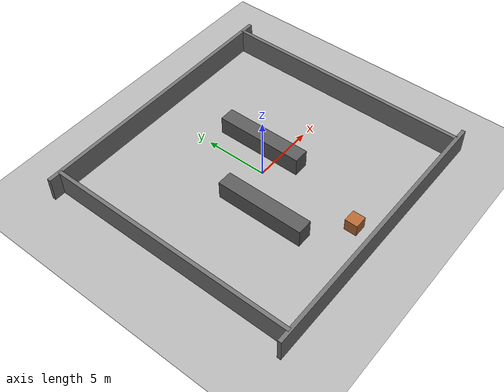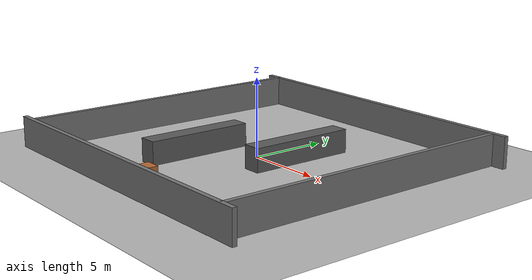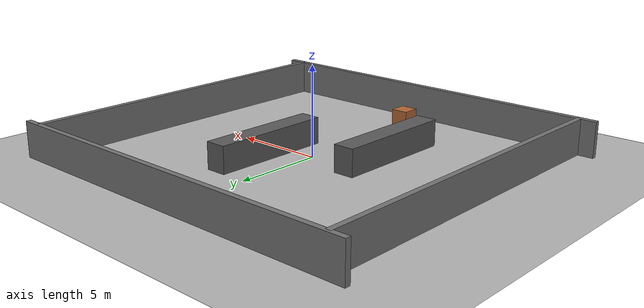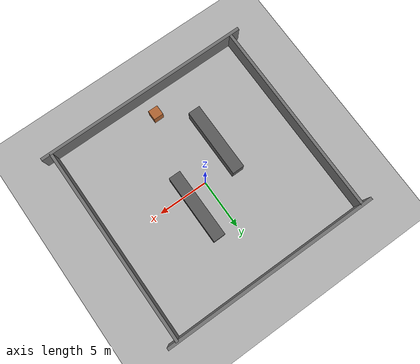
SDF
<?xml version="1.0"?>
<sdf version="1.7">
  <world name="warehouse_lightweight">

    <physics name="1ms" type="ignored">
      <max_step_size>0.001</max_step_size>
      <real_time_factor>1.0</real_time_factor>
    </physics>

    <!-- Explicit system plugins (some setups don't auto-load these). -->
    <plugin filename="ignition-gazebo-physics-system"
            name="ignition::gazebo::systems::Physics" />
    <plugin filename="ignition-gazebo-user-commands-system"
            name="ignition::gazebo::systems::UserCommands" />
    <plugin filename="ignition-gazebo-scene-broadcaster-system"
            name="ignition::gazebo::systems::SceneBroadcaster" />
    <plugin filename="ignition-gazebo-sensors-system"
            name="ignition::gazebo::systems::Sensors">
      <render_engine>ogre2</render_engine>
    </plugin>

    <!-- Inline directional light (avoids model://sun fuel lookup) -->
    <light type="directional" name="sun">
      <cast_shadows>true</cast_shadows>
      <pose>0 0 10 0 0 0</pose>
      <diffuse>0.8 0.8 0.8 1</diffuse>
      <specular>0.2 0.2 0.2 1</specular>
      <attenuation>
        <range>1000</range>
        <constant>0.9</constant>
        <linear>0.01</linear>
        <quadratic>0.001</quadratic>
      </attenuation>
      <direction>-0.5 0.1 -0.9</direction>
    </light>

    <!-- Inline static ground plane (avoids model://ground_plane fuel lookup) -->
    <model name="ground_plane">
      <static>true</static>
      <link name="link">
        <collision name="collision">
          <geometry>
            <plane>
              <normal>0 0 1</normal>
              <size>100 100</size>
            </plane>
          </geometry>
        </collision>
        <visual name="visual">
          <geometry>
            <plane>
              <normal>0 0 1</normal>
              <size>100 100</size>
            </plane>
          </geometry>
          <material>
            <ambient>0.6 0.6 0.6 1</ambient>
            <diffuse>0.7 0.7 0.7 1</diffuse>
          </material>
        </visual>
      </link>
    </model>

    <model name="wall_north">
      <static>true</static>
      <pose>0 10 1.0 0 0 0</pose>
      <link name="link">
        <collision name="collision">
          <geometry><box><size>22 0.3 2.0</size></box></geometry>
        </collision>
        <visual name="visual">
          <geometry><box><size>22 0.3 2.0</size></box></geometry>
          <material>
            <ambient>0.45 0.45 0.45 1</ambient>
            <diffuse>0.45 0.45 0.45 1</diffuse>
          </material>
        </visual>
      </link>
    </model>

    <model name="wall_south">
      <static>true</static>
      <pose>0 -10 1.0 0 0 0</pose>
      <link name="link">
        <collision name="collision">
          <geometry><box><size>22 0.3 2.0</size></box></geometry>
        </collision>
        <visual name="visual">
          <geometry><box><size>22 0.3 2.0</size></box></geometry>
          <material>
            <ambient>0.45 0.45 0.45 1</ambient>
            <diffuse>0.45 0.45 0.45 1</diffuse>
          </material>
        </visual>
      </link>
    </model>

    <model name="wall_west">
      <static>true</static>
      <pose>-10 0 1.0 0 0 0</pose>
      <link name="link">
        <collision name="collision">
          <geometry><box><size>0.3 20 2.0</size></box></geometry>
        </collision>
        <visual name="visual">
          <geometry><box><size>0.3 20 2.0</size></box></geometry>
          <material>
            <ambient>0.45 0.45 0.45 1</ambient>
            <diffuse>0.45 0.45 0.45 1</diffuse>
          </material>
        </visual>
      </link>
    </model>

    <model name="wall_east">
      <static>true</static>
      <pose>10 0 1.0 0 0 0</pose>
      <link name="link">
        <collision name="collision">
          <geometry><box><size>0.3 20 2.0</size></box></geometry>
        </collision>
        <visual name="visual">
          <geometry><box><size>0.3 20 2.0</size></box></geometry>
          <material>
            <ambient>0.45 0.45 0.45 1</ambient>
            <diffuse>0.45 0.45 0.45 1</diffuse>
          </material>
        </visual>
      </link>
    </model>

    <!-- Two shelf rows (interior static obstacles). -->
    <model name="shelf_row_1">
      <static>true</static>
      <pose>-3.0 -2.5 0.75 0 0 0</pose>
      <link name="link">
        <collision name="collision">
          <geometry><box><size>1.2 7.0 1.5</size></box></geometry>
        </collision>
        <visual name="visual">
          <geometry><box><size>1.2 7.0 1.5</size></box></geometry>
          <material>
            <ambient>0.35 0.35 0.35 1</ambient>
            <diffuse>0.35 0.35 0.35 1</diffuse>
          </material>
        </visual>
      </link>
    </model>

    <model name="shelf_row_2">
      <static>true</static>
      <pose>2.0 1.5 0.75 0 0 0</pose>
      <link name="link">
        <collision name="collision">
          <geometry><box><size>1.2 7.0 1.5</size></box></geometry>
        </collision>
        <visual name="visual">
          <geometry><box><size>1.2 7.0 1.5</size></box></geometry>
          <material>
            <ambient>0.35 0.35 0.35 1</ambient>
            <diffuse>0.35 0.35 0.35 1</diffuse>
          </material>
        </visual>
      </link>
    </model>

    <model name="moving_box">
      <pose>0 -8 0.5 0 0 0</pose>
      <link name="link">
        <inertial>
          <mass>1.0</mass>
          <inertia>
            <ixx>0.16666</ixx>
            <iyy>0.16666</iyy>
            <izz>0.16666</izz>
            <ixy>0</ixy>
            <ixz>0</ixz>
            <iyz>0</iyz>
          </inertia>
        </inertial>
        <collision name="collision">
          <geometry>
            <box>
              <size>1.0 1.0 1.0</size>
            </box>
          </geometry>
        </collision>
        <visual name="visual">
          <geometry>
            <box>
              <size>1.0 1.0 1.0</size>
            </box>
          </geometry>
          <material>
            <ambient>0.7 0.4 0.2 1</ambient>
            <diffuse>0.7 0.4 0.2 1</diffuse>
          </material>
        </visual>
      </link>
      <plugin filename="ignition-gazebo-velocity-control-system"
              name="ignition::gazebo::systems::VelocityControl">
      </plugin>
      <plugin filename="ignition-gazebo-odometry-publisher-system"
              name="ignition::gazebo::systems::OdometryPublisher">
        <odom_publish_frequency>20</odom_publish_frequency>
        <dimensions>3</dimensions>
        <robot_base_frame>moving_box</robot_base_frame>
      </plugin>
    </model>

    <scene>
      <ambient>0.4 0.4 0.4 1</ambient>
      <background>0.7 0.7 0.7 1</background>
    </scene>

  </world>
</sdf>
